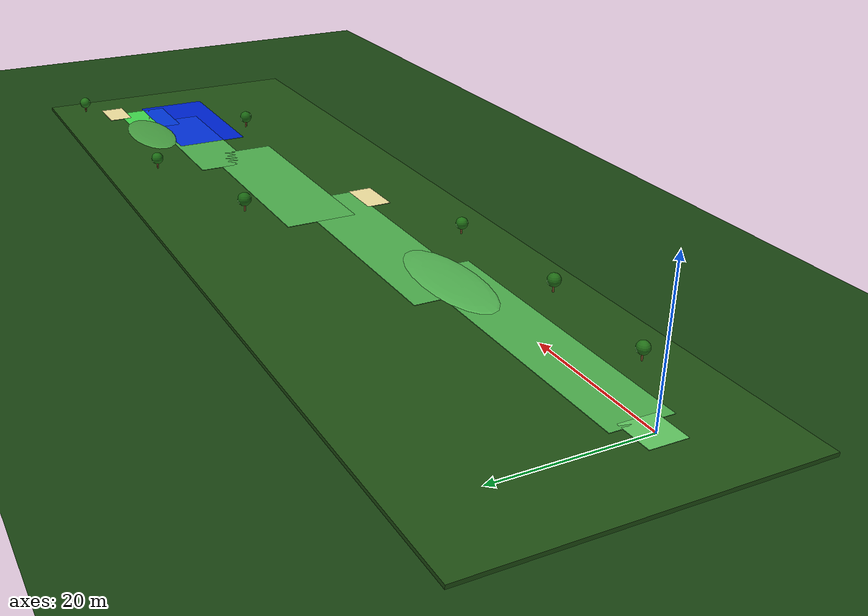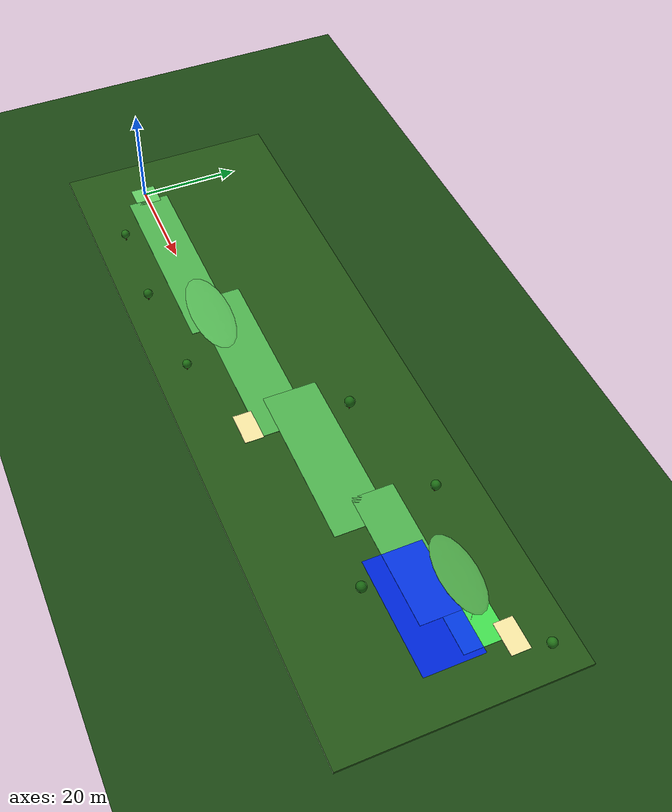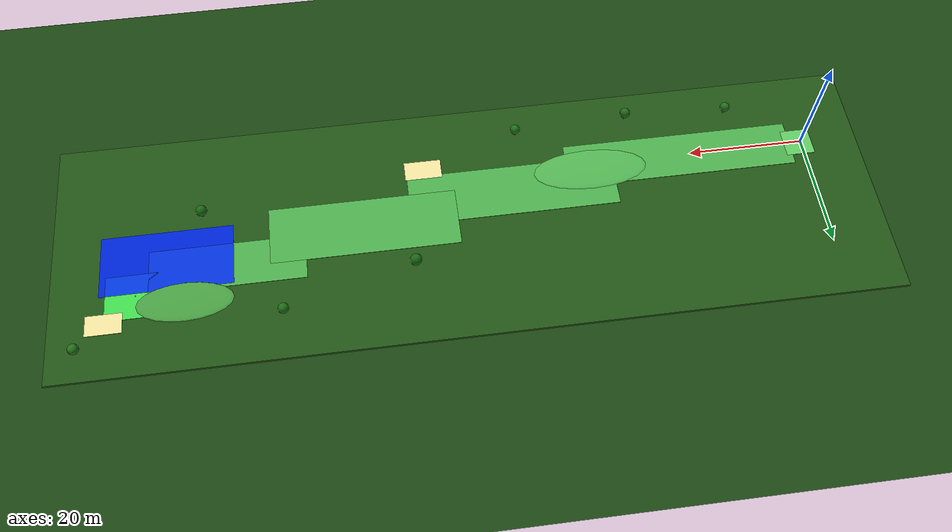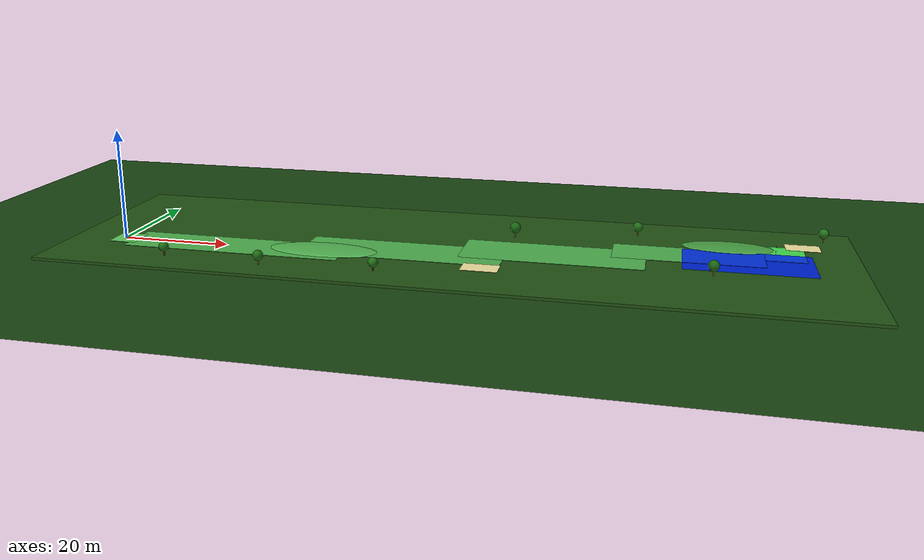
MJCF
<mujoco model="course3_white_dogwood">
  <option timestep="0.0005" gravity="0 0 -9.81" integrator="Euler">
    <flag contact="enable"/>
  </option>

  <default>
    <geom condim="3" friction="0.8 0.005 0.0001"/>
  </default>

  <visual>
    <quality shadowsize="4096"/>
    <headlight ambient="0.45 0.45 0.45" diffuse="0.75 0.75 0.75" specular="0.2 0.2 0.2"/>
    <map znear="0.001" zfar="500"/>
  </visual>

  <worldbody>

    <!-- ============ ROUGH BASE ============ -->
    <geom name="rough_base" type="box" pos="60 8 -0.27" size="70 22 0.25"
          rgba="0.13 0.32 0.08 1" friction="0.9 0.025 0.0005"/>

    <!-- ============ FALLBACK GROUND ============ -->
    <geom name="ground" type="plane" size="180 120 0.1" pos="0 0 -0.52"
          rgba="0.10 0.27 0.07 1" friction="0.9 0.025 0.0005"/>

    <!-- ============ TEE BOX ============ -->
    <geom name="tee_box" type="box" pos="0.5 0 -0.22" size="2.5 2.5 0.27"
          rgba="0.38 0.78 0.38 1" friction="0.4 0.005 0.0001"/>
    <geom name="tee_marker" type="cylinder" pos="0.05 0 0.06" size="0.05 0.005"
          rgba="0.95 0.25 0.25 1" contype="0" conaffinity="0"/>

    <!-- ============ FAIRWAY ============ -->
    <geom name="fairway_drive" type="box" pos="22 0 -0.22" size="20 4.2 0.27"
          rgba="0.30 0.68 0.30 1" friction="0.42 0.005 0.0001"/>
    <geom name="fairway_landing" type="box" pos="52 3.5 -0.22" size="18 4.8 0.27"
          rgba="0.30 0.68 0.30 1" friction="0.42 0.005 0.0001"/>
    <geom name="fairway_valley" type="box" pos="78 7.5 -0.22" size="16 5.2 0.27"
          rgba="0.30 0.68 0.30 1" friction="0.44 0.005 0.0001"/>
    <geom name="fairway_approach" type="box" pos="101 12 -0.22" size="13 4.0 0.27"
          rgba="0.30 0.68 0.30 1" friction="0.38 0.005 0.0001"/>

    <!-- ============ SLOPES / MOUNDS ============ -->
    <geom name="drive_slope" type="ellipsoid" pos="38 1 0.03" size="10 4 0.35"
          rgba="0.32 0.70 0.32 1" friction="0.45 0.005 0.0001"/>
    <geom name="approach_mound_right" type="ellipsoid" pos="108 18 0.04" size="8 3.5 0.35"
          rgba="0.28 0.62 0.26 1" friction="0.55 0.008 0.0002"/>

    <!-- ============ GREEN ============ -->
    <geom name="green" type="box" pos="116 16 -0.22" size="5.0 4.0 0.27"
          rgba="0.25 0.85 0.30 1" friction="0.15 0.002 0.00005"/>

    <!-- ============ POND: physical surface the ball lands on ============ -->
    <!-- Thin box at ground level with very high friction to trap the ball.
         The ball physically contacts this surface and stops quickly. -->
    <geom name="pond" type="box" pos="111 10 -0.21" size="11 5.5 0.28"
          rgba="0.00 0.15 1.00 0.85"
          friction="2.0 0.1 0.005"/>

    <!-- ============ BUNKERS ============ -->
    <geom name="bunker_left_landing" type="box" pos="67 -2.5 -0.22" size="3.2 1.8 0.28"
          rgba="0.94 0.88 0.62 1" friction="1.25 0.06 0.001"/>
    <geom name="bunker_back_right_green" type="box" pos="121 20.5 -0.22" size="3.0 1.8 0.28"
          rgba="0.94 0.88 0.62 1" friction="1.25 0.06 0.001"/>

    <!-- ============ HOLE ============ -->
    <body name="hole" pos="116.0 16.0 0.06">
      <geom name="hole_circle" type="cylinder" size="0.054 0.002"
            rgba="0.02 0.02 0.02 1" contype="0" conaffinity="0"/>
      <geom name="flag_pole" type="cylinder" pos="0 0 0.75" size="0.015 0.75"
            rgba="0.90 0.90 0.90 1" contype="0" conaffinity="0"/>
      <geom name="flag" type="box" pos="0.08 0 1.40" size="0.10 0.005 0.06"
            rgba="0.95 0.15 0.15 1" contype="0" conaffinity="0"/>
    </body>

    <!-- ============ TREES ============ -->
    <body name="tree1" pos="12 -8 0">
      <geom type="cylinder" pos="0 0 0.7" size="0.12 0.7" rgba="0.45 0.30 0.15 1" contype="0" conaffinity="0"/>
      <geom type="sphere" pos="0 0 1.65" size="0.85" rgba="0.13 0.44 0.09 1" contype="0" conaffinity="0"/>
      <geom type="sphere" pos="0.25 0.15 2.0" size="0.18" rgba="0.95 0.95 0.90 1" contype="0" conaffinity="0"/>
    </body>
    <body name="tree2" pos="30 -9 0">
      <geom type="cylinder" pos="0 0 0.7" size="0.13 0.7" rgba="0.45 0.30 0.15 1" contype="0" conaffinity="0"/>
      <geom type="sphere" pos="0 0 1.65" size="0.9" rgba="0.12 0.42 0.08 1" contype="0" conaffinity="0"/>
    </body>
    <body name="tree3" pos="50 -8 0">
      <geom type="cylinder" pos="0 0 0.65" size="0.12 0.65" rgba="0.45 0.30 0.15 1" contype="0" conaffinity="0"/>
      <geom type="sphere" pos="0 0 1.55" size="0.85" rgba="0.12 0.44 0.08 1" contype="0" conaffinity="0"/>
    </body>
    <body name="tree4" pos="70 16 0">
      <geom type="cylinder" pos="0 0 0.8" size="0.14 0.8" rgba="0.45 0.30 0.15 1" contype="0" conaffinity="0"/>
      <geom type="sphere" pos="0 0 1.85" size="1.0" rgba="0.10 0.40 0.07 1" contype="0" conaffinity="0"/>
    </body>
    <body name="tree5" pos="92 22 0">
      <geom type="cylinder" pos="0 0 0.7" size="0.13 0.7" rgba="0.45 0.30 0.15 1" contype="0" conaffinity="0"/>
      <geom type="sphere" pos="0 0 1.65" size="0.9" rgba="0.11 0.43 0.08 1" contype="0" conaffinity="0"/>
    </body>
    <body name="tree6" pos="125 25 0">
      <geom type="cylinder" pos="0 0 0.7" size="0.13 0.7" rgba="0.45 0.30 0.15 1" contype="0" conaffinity="0"/>
      <geom type="sphere" pos="0 0 1.65" size="0.9" rgba="0.13 0.45 0.09 1" contype="0" conaffinity="0"/>
    </body>
    <body name="tree7" pos="105 2 0">
      <geom type="cylinder" pos="0 0 0.75" size="0.14 0.75" rgba="0.45 0.30 0.15 1" contype="0" conaffinity="0"/>
      <geom type="sphere" pos="0 0 1.75" size="0.95" rgba="0.10 0.40 0.07 1" contype="0" conaffinity="0"/>
    </body>

    <!-- ============ LIGHTS ============ -->
    <light name="main_sun" pos="55 -20 35" dir="-0.2 0.2 -1"
           diffuse="1.2 1.2 1.1" ambient="0.55 0.55 0.55" specular="0.3 0.3 0.3"/>
    <light name="tee_light" pos="0 0 8" dir="0 0 -1"
           diffuse="0.8 0.8 0.8" ambient="0.25 0.25 0.25"/>
    <light name="fairway_light" pos="65 6 18" dir="0 0 -1"
           diffuse="0.9 0.9 0.85" ambient="0.30 0.30 0.30"/>
    <light name="green_light" pos="116 16 14" dir="0 0 -1"
           diffuse="1.1 1.1 1.0" ambient="0.35 0.35 0.35"/>

    <!-- ============ GOLF BALL ============ -->
    <body name="ball" pos="0.05 0 0.0214">
      <freejoint name="ball_joint"/>
      <geom name="ball_geom" type="sphere" size="0.0214"
            rgba="1 1 1 1" mass="0.0459"
            friction="0.5 0.005 0.0001"/>
    </body>
  </worldbody>

  <sensor>
    <framepos name="ball_pos" objtype="body" objname="ball"/>
    <framelinvel name="ball_vel" objtype="body" objname="ball"/>
  </sensor>
</mujoco>
